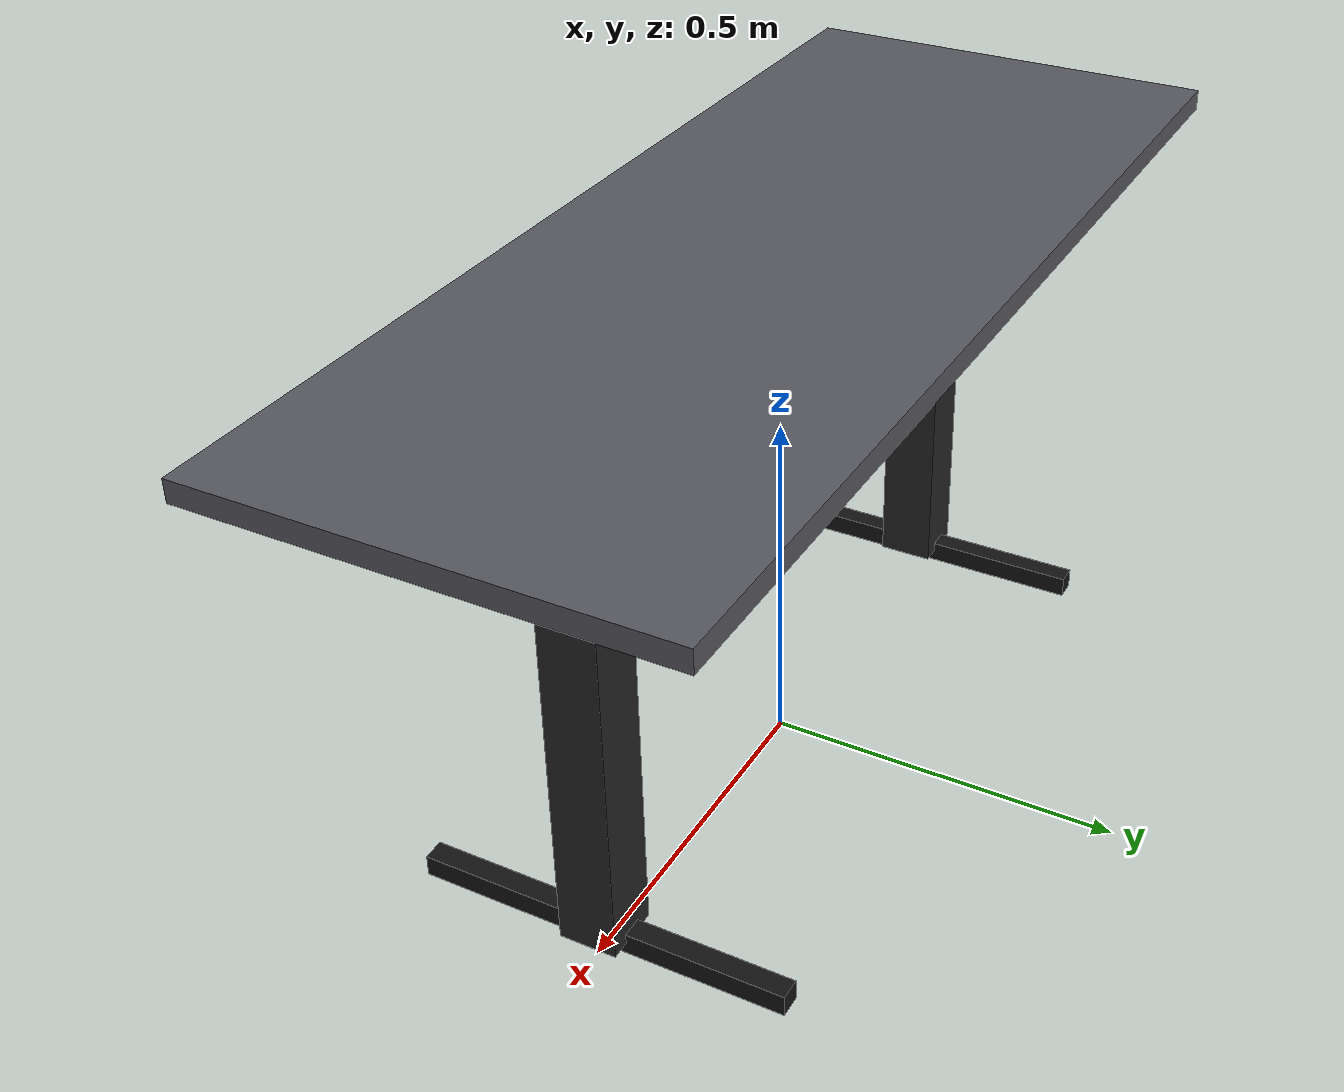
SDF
<?xml version="1.0" ?>
<sdf version="1.9">
  <model name="Table_2">
    <static>true</static>

    <!-- Dimensions used
         length = 1.52 m
         width  = 0.61 m
         height = 0.76 m
    -->

    <!-- TABLETOP                  -->
    <link name="tabletop">
      <!-- tabletop thickness assumed = 0.03 m -->
      <pose>0 0 0.745 0 0 0</pose>

      <collision name="tabletop_collision">
        <geometry>
          <box>
            <size>1.52 0.61 0.03</size>
          </box>
        </geometry>
      </collision>

      <visual name="tabletop_visual">
        <geometry>
          <box>
            <size>1.52 0.61 0.03</size>
          </box>
        </geometry>
        <material>
          <ambient>0.35 0.35 0.38 1</ambient>
          <diffuse>0.35 0.35 0.38 1</diffuse>
        </material>
      </visual>

      <inertial>
        <mass>18.0</mass>
        <inertia>
          <ixx>1.0</ixx>
          <iyy>1.0</iyy>
          <izz>1.0</izz>
          <ixy>0.0</ixy>
          <ixz>0.0</ixz>
          <iyz>0.0</iyz>
        </inertia>
      </inertial>
    </link>

    <!-- LEFT LEG COLUMN           -->
    <link name="left_leg">
      <pose>-0.48 0 0.3525 0 0 0</pose>

      <collision name="left_leg_collision">
        <geometry>
          <box>
            <size>0.08 0.08 0.645</size>
          </box>
        </geometry>
      </collision>

      <visual name="left_leg_visual">
        <geometry>
          <box>
            <size>0.08 0.08 0.645</size>
          </box>
        </geometry>
        <material>
          <ambient>0.15 0.15 0.15 1</ambient>
          <diffuse>0.15 0.15 0.15 1</diffuse>
        </material>
      </visual>

      <inertial>
        <mass>6.0</mass>
        <inertia>
          <ixx>0.05</ixx>
          <iyy>0.05</iyy>
          <izz>0.05</izz>
          <ixy>0.0</ixy>
          <ixz>0.0</ixz>
          <iyz>0.0</iyz>
        </inertia>
      </inertial>
    </link>

    <!-- RIGHT LEG COLUMN          -->
    <link name="right_leg">
      <pose>0.48 0 0.3525 0 0 0</pose>

      <collision name="right_leg_collision">
        <geometry>
          <box>
            <size>0.08 0.08 0.645</size>
          </box>
        </geometry>
      </collision>

      <visual name="right_leg_visual">
        <geometry>
          <box>
            <size>0.08 0.08 0.645</size>
          </box>
        </geometry>
        <material>
          <ambient>0.15 0.15 0.15 1</ambient>
          <diffuse>0.15 0.15 0.15 1</diffuse>
        </material>
      </visual>

      <inertial>
        <mass>6.0</mass>
        <inertia>
          <ixx>0.05</ixx>
          <iyy>0.05</iyy>
          <izz>0.05</izz>
          <ixy>0.0</ixy>
          <ixz>0.0</ixz>
          <iyz>0.0</iyz>
        </inertia>
      </inertial>
    </link>

    <!-- LEFT FOOT                 -->
    <!-- parallel to table width   -->
    <link name="left_foot">
      <pose>-0.48 0 0.03 0 0 0</pose>

      <collision name="left_foot_collision">
        <geometry>
          <box>
            <size>0.03 0.52 0.03</size>
          </box>
        </geometry>
      </collision>

      <visual name="left_foot_visual">
        <geometry>
          <box>
            <size>0.03 0.52 0.03</size>
          </box>
        </geometry>
        <material>
          <ambient>0.08 0.08 0.08 1</ambient>
          <diffuse>0.08 0.08 0.08 1</diffuse>
        </material>
      </visual>

      <inertial>
        <mass>4.0</mass>
        <inertia>
          <ixx>0.02</ixx>
          <iyy>0.02</iyy>
          <izz>0.02</izz>
          <ixy>0.0</ixy>
          <ixz>0.0</ixz>
          <iyz>0.0</iyz>
        </inertia>
      </inertial>
    </link>

    <!-- RIGHT FOOT                -->
    <!-- parallel to table width   -->
    <link name="right_foot">
      <pose>0.48 0 0.03 0 0 0</pose>

      <collision name="right_foot_collision">
        <geometry>
          <box>
            <size>0.03 0.52 0.03</size>
          </box>
        </geometry>
      </collision>

      <visual name="right_foot_visual">
        <geometry>
          <box>
            <size>0.03 0.52 0.03</size>
          </box>
        </geometry>
        <material>
          <ambient>0.08 0.08 0.08 1</ambient>
          <diffuse>0.08 0.08 0.08 1</diffuse>
        </material>
      </visual>

      <inertial>
        <mass>4.0</mass>
        <inertia>
          <ixx>0.02</ixx>
          <iyy>0.02</iyy>
          <izz>0.02</izz>
          <ixy>0.0</ixy>
          <ixz>0.0</ixz>
          <iyz>0.0</iyz>
        </inertia>
      </inertial>
    </link>

    <!-- Optional small control box under tabletop -->
    <link name="control_box">
      <pose>0.15 -0.24 0.70 0 0 0</pose>

      <collision name="control_box_collision">
        <geometry>
          <box>
            <size>0.12 0.04 0.02</size>
          </box>
        </geometry>
      </collision>

      <visual name="control_box_visual">
        <geometry>
          <box>
            <size>0.12 0.04 0.02</size>
          </box>
        </geometry>
        <material>
          <ambient>0.05 0.05 0.05 1</ambient>
          <diffuse>0.05 0.05 0.05 1</diffuse>
        </material>
      </visual>

      <inertial>
        <mass>0.2</mass>
        <inertia>
          <ixx>0.0001</ixx>
          <iyy>0.0001</iyy>
          <izz>0.0001</izz>
          <ixy>0.0</ixy>
          <ixz>0.0</ixz>
          <iyz>0.0</iyz>
        </inertia>
      </inertial>
    </link>

    <!-- FIXED JOINTS              -->
    <joint name="tabletop_to_left_leg" type="fixed">
      <parent>tabletop</parent>
      <child>left_leg</child>
    </joint>

    <joint name="tabletop_to_right_leg" type="fixed">
      <parent>tabletop</parent>
      <child>right_leg</child>
    </joint>

    <joint name="left_leg_to_left_foot" type="fixed">
      <parent>left_leg</parent>
      <child>left_foot</child>
    </joint>

    <joint name="right_leg_to_right_foot" type="fixed">
      <parent>right_leg</parent>
      <child>right_foot</child>
    </joint>

    <joint name="tabletop_to_control_box" type="fixed">
      <parent>tabletop</parent>
      <child>control_box</child>
    </joint>

  </model>
</sdf>
